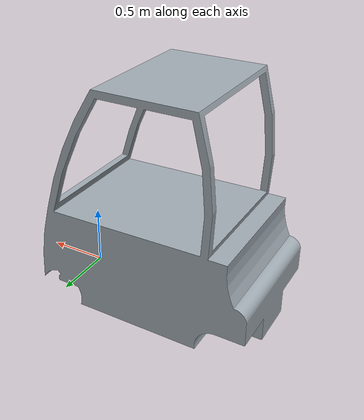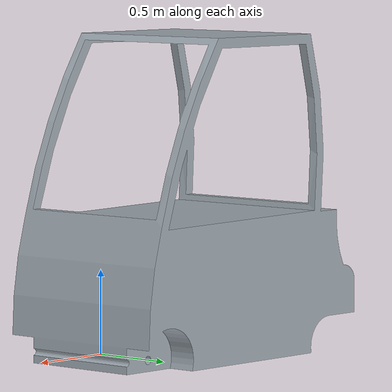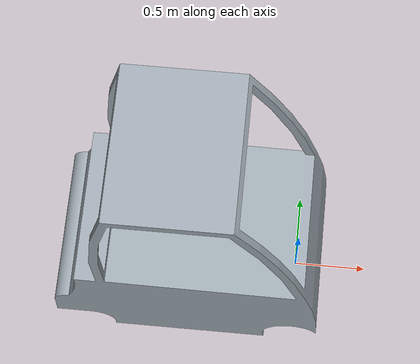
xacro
<?xml version="1.0" ?>

<robot name="RX20_16" xmlns:xacro="http://www.ros.org/wiki/xacro">

  <link name="base_footprint"/>
  <link name="base_scan"/>

  <link name="base_link">
   <inertial>
    <origin xyz="-0.8 0 0.417" rpy="0 0 0"/>
     <xacro:box_inertia mass="10" x="1.843" y="1.1" z="0.835"/>
    <mass value= "10"/>
    </inertial>

    <collision>
      <origin rpy="0 0 0" xyz="0 0 0"/>
      <geometry>
        <mesh
          filename="$(find forklift_simulator)/urdf/RX20_16/meshes/body.dae" />
      </geometry>
    </collision>
    <visual>
      <origin rpy="0 0 0" xyz="0 0 0"/>
      <geometry>
        <mesh
        filename="$(find forklift_simulator)/urdf/RX20_16/meshes/body.dae" />
      </geometry>
    </visual>
  </link>

  <joint name="imu_joint" type="fixed">
    <parent link="base_link"/>
    <child link="imu_link"/>
    <origin xyz="0.0 0 0.068" rpy="0 0 0"/>
  </joint>

  <link name="imu_link"/>

  <joint name="base_joint" type="fixed">
    <parent link="base_footprint" />
    <child link="base_link" />
    <origin xyz="0.0 0 0.0" rpy="0 0 0" />
    <axis xyz="0 0 1" />
  </joint>

  <joint name="scan_joint" type="fixed">
    <parent link="base_footprint" />
    <child link="base_scan" />
    <origin xyz="0.0 0 0.0" rpy="0 0 0" />
    <axis xyz="0 0 1" />
  </joint>

</robot>
